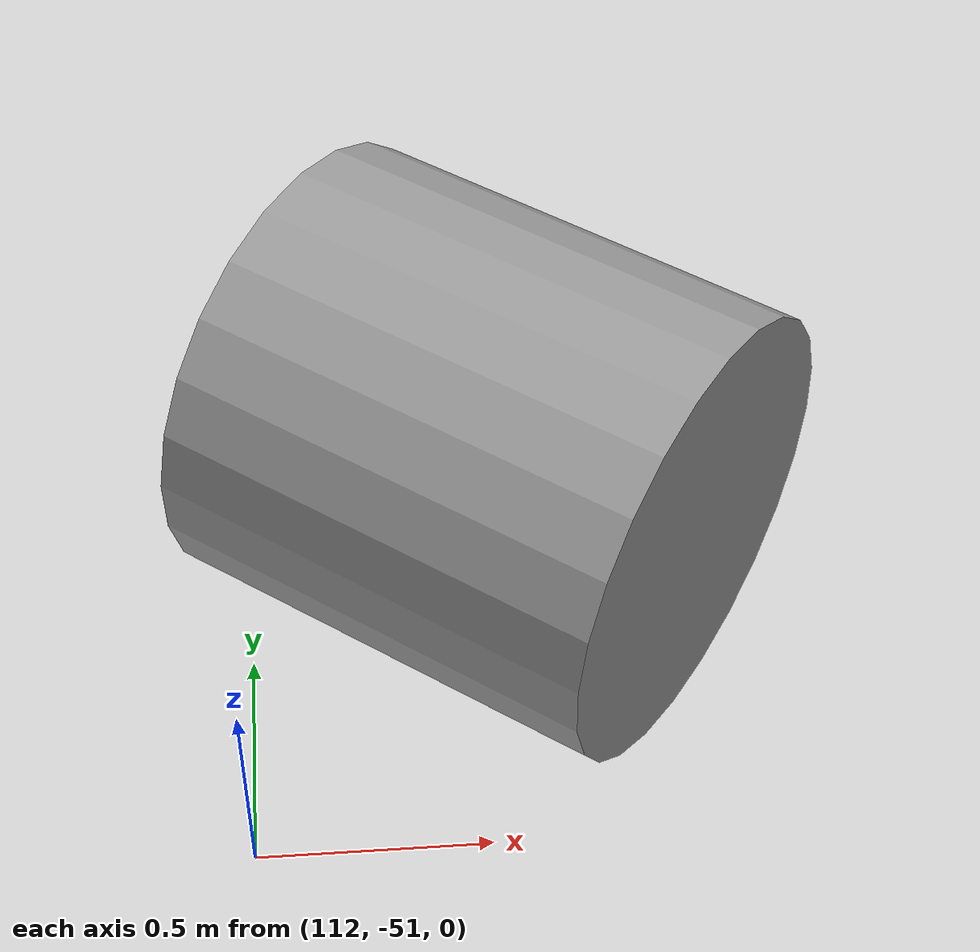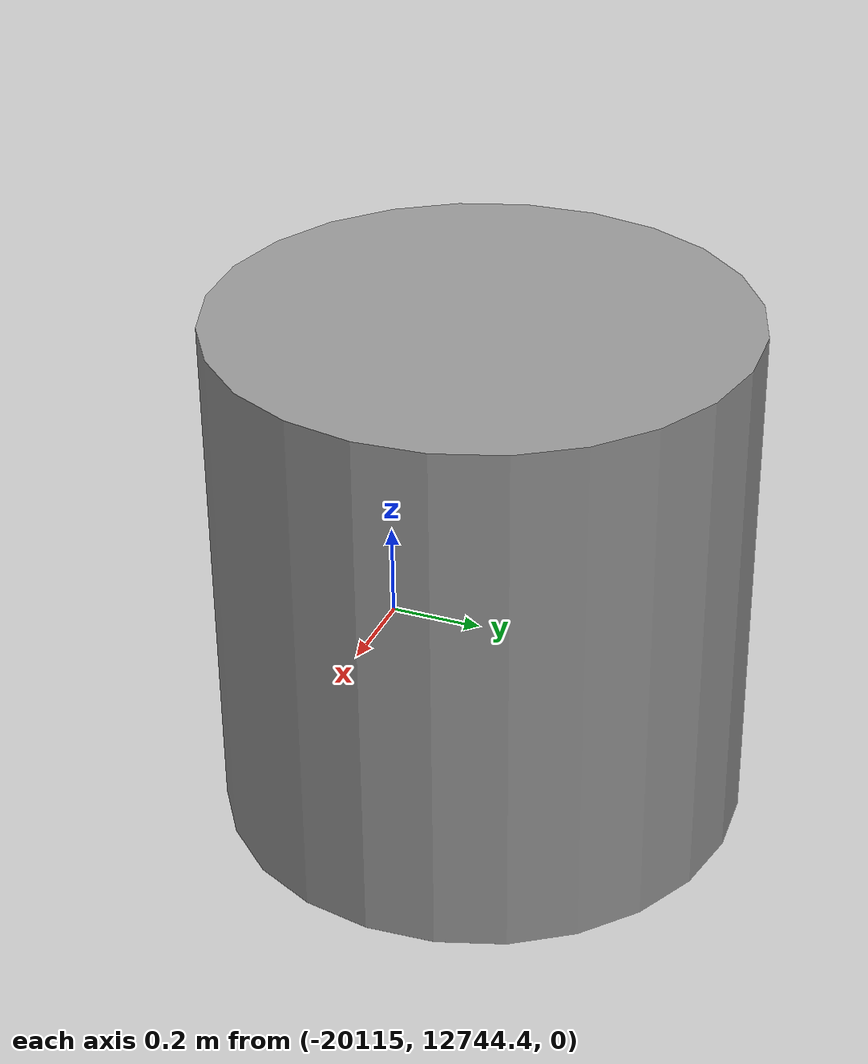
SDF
<sdf version="1.7">
 <world name="default">
  <light name="sun" type="directional">
   <pose>0 0 10 0 -0 0</pose>
   <diffuse>0.8 0.8 0.8 1</diffuse>
   <specular>0.2 0.2 0.2 1</specular>
   <attenuation>
    <range>1000</range>
    <constant>0.9</constant>
    <linear>0.01</linear>
    <quadratic>0.001</quadratic>
   </attenuation>
   <direction>-0.5 0.1 -0.9</direction>
   <spot><inner_angle>0</inner_angle><outer_angle>0</outer_angle><falloff>0</falloff></spot>
  </light>
  <model name="ground_plane">
   <static>1</static>
   <link name="link">
    <collision name="collision">
     <geometry><plane><normal>0 0 1</normal><size>100 100</size></plane></geometry>
     <surface>
      <contact><collide_bitmask>65535</collide_bitmask></contact>
      <friction><ode><mu>100</mu><mu2>50</mu2></ode></friction>
     </surface>
    </collision>
    <visual name="visual">
     <cast_shadows>0</cast_shadows>
     <geometry><plane><normal>0 0 1</normal><size>100 100</size></plane></geometry>
     <material>
      <script><uri>file://media/materials/scripts/gazebo.material</uri><name>Gazebo/Grey</name></script>
     </material>
    </visual>
   </link>
  </model>
  <gravity>0 0 -9.8</gravity>
  <magnetic_field>6e-06 2.3e-05 -4.2e-05</magnetic_field>
  <atmosphere type="adiabatic"/>
  <physics type="ode">
   <max_step_size>0.001</max_step_size>
   <real_time_factor>1</real_time_factor>
   <real_time_update_rate>1000</real_time_update_rate>
  </physics>
  <scene><ambient>0.4 0.4 0.4 1</ambient><background>0.7 0.7 0.7 1</background><shadows>1</shadows></scene>
  <audio><device>default</device></audio>
  <spherical_coordinates>
   <surface_model>EARTH_WGS84</surface_model>
   <latitude_deg>0</latitude_deg>
   <longitude_deg>0</longitude_deg>
   <elevation>0</elevation>
   <heading_deg>0</heading_deg>
  </spherical_coordinates>
  <model name="unit_box">
   <pose>2.90163 -1.72734 0.5 -3.14159 0 2.5105</pose>
   <link name="link">
    <inertial>
     <mass>1</mass>
     <inertia>
      <ixx>0.166667</ixx>
      <ixy>0</ixy>
      <ixz>0</ixz>
      <iyy>0.166667</iyy>
      <iyz>0</iyz>
      <izz>0.166667</izz>
     </inertia>
    </inertial>
    <collision name="collision"><geometry><box><size>1 1 1</size></box></geometry></collision>
    <visual name="visual">
     <geometry><box><size>1 1 1</size></box></geometry>
     <material>
      <script><name>Gazebo/Grey</name><uri>file://media/materials/scripts/gazebo.material</uri></script>
     </material>
    </visual>
   </link>
  </model>
  <light name="user_point_light_0" type="point">
   <pose>-4.29448 -2.12229 1 0 -0 0</pose>
   <diffuse>0.5 0.5 0.5 1</diffuse>
   <specular>0.1 0.1 0.1 1</specular>
   <attenuation>
    <range>20</range>
    <constant>0.5</constant>
    <linear>0.01</linear>
    <quadratic>0.001</quadratic>
   </attenuation>
   <cast_shadows>0</cast_shadows>
   <direction>0 0 -1</direction>
  </light>
  <model name="unit_cylinder">
   <pose>112.546 -50.3322 0.499995 1.57078 -0.675203 0.942964</pose>
   <link name="link">
    <inertial>
     <mass>1</mass>
     <inertia><ixx>0.145833</ixx><ixy>0</ixy><ixz>0</ixz><iyy>0.145833</iyy><iyz>0</iyz><izz>0.125</izz></inertia>
    </inertial>
    <collision name="collision">
     <geometry><cylinder><radius>0.5</radius><length>1</length></cylinder></geometry>
    </collision>
    <visual name="visual">
     <geometry><cylinder><radius>0.5</radius><length>1</length></cylinder></geometry>
     <material>
      <script><name>Gazebo/Grey</name><uri>file://media/materials/scripts/gazebo.material</uri></script>
     </material>
    </visual>
   </link>
  </model>
  <model name="unit_cylinder_0">
   <pose>-20114.5 12744.8 0.499991 -0 -0 -0.590669</pose>
   <link name="link">
    <inertial>
     <mass>1</mass>
     <inertia><ixx>0.145833</ixx><ixy>0</ixy><ixz>0</ixz><iyy>0.145833</iyy><iyz>0</iyz><izz>0.125</izz></inertia>
    </inertial>
    <collision name="collision">
     <geometry><cylinder><radius>0.5</radius><length>1</length></cylinder></geometry>
    </collision>
    <visual name="visual">
     <geometry><cylinder><radius>0.5</radius><length>1</length></cylinder></geometry>
     <material>
      <script><name>Gazebo/Grey</name><uri>file://media/materials/scripts/gazebo.material</uri></script>
     </material>
    </visual>
   </link>
  </model>
 </world>
</sdf>
